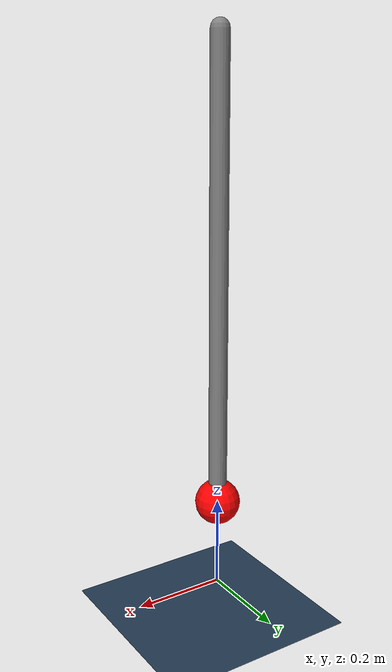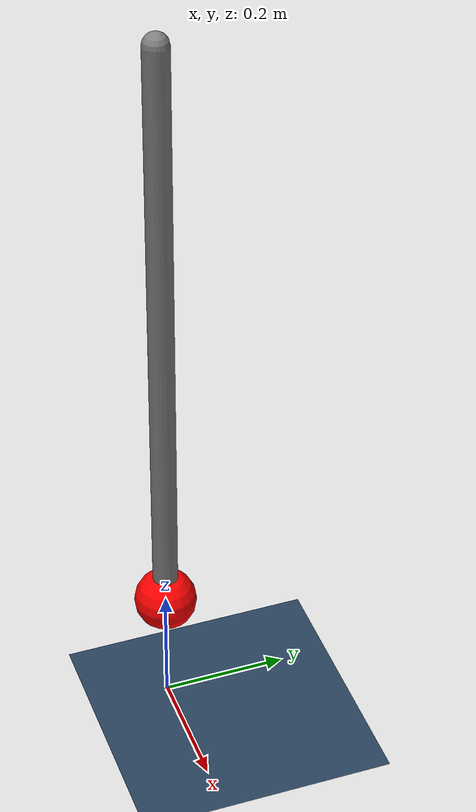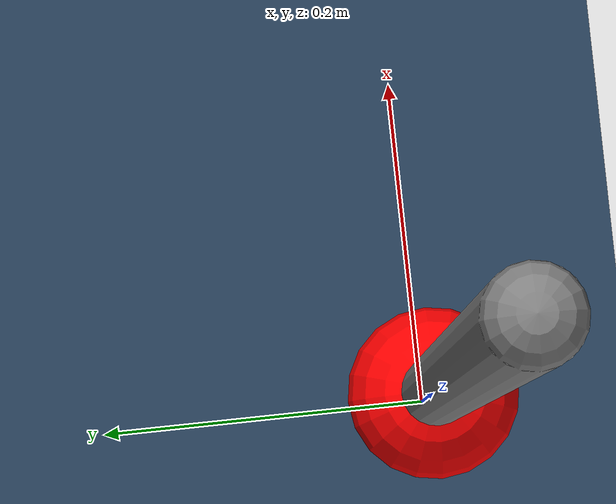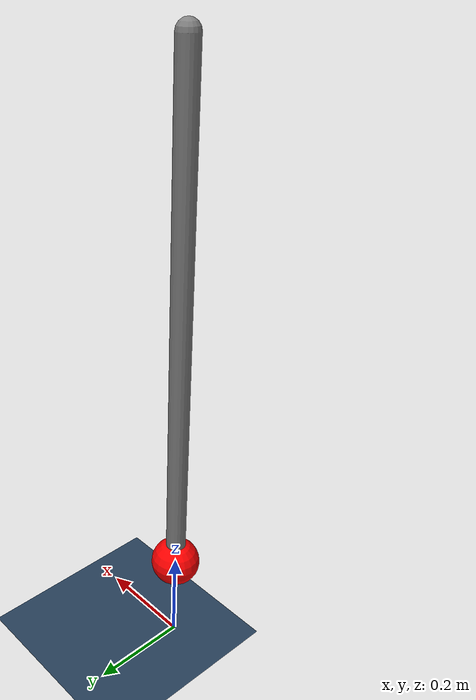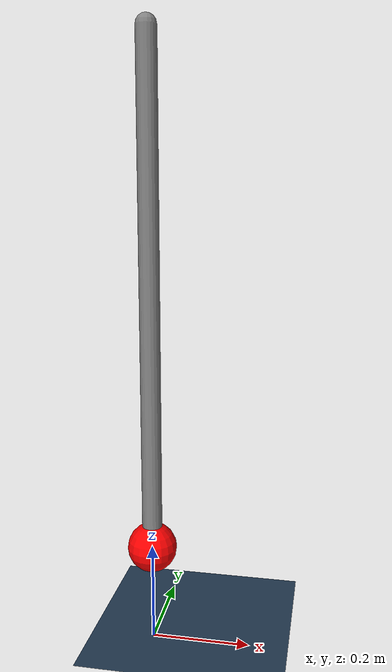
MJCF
<mujoco model="pendulum">

    <compiler angle="radian"/>

    <!-- works -->

    <!-- experimental -->
    <option integrator="implicitfast" timestep="0.02" gravity="0 0 -9.81"/>

    <asset>
        <texture type="skybox" builtin="gradient" rgb1="0.6 0.7 0.9" rgb2="0.3 0.3 0.4" width="512" height="3072"/>
        <texture type="2d" name="groundplane" builtin="checker" mark="edge" rgb1="0.2 0.3 0.4" rgb2="0.1 0.2 0.3" markrgb="0.8 0.8 0.8" width="300" height="300"/>
        <material name="groundplane" texture="groundplane" texuniform="true" texrepeat="5 5" reflectance="0.2"/>
    </asset>

    <worldbody>
        <light name="global_light" directional="true" diffuse="1 1 1" specular="0.3 0.3 0.3" castshadow="false"/>
        <light name="fill_light_0" pos="-5 0 10" dir="0 0 -1" directional="false" diffuse="1 1 1" specular="0.2 0.2 0.2"/>
        <light name="fill_light_1" pos="0 0 10" dir="0 0 -1" directional="false" diffuse="1 1 1" specular="0.2 0.2 0.2"/>
        <light name="fill_light_2" pos="5 0 10" dir="0 0 -1" directional="false" diffuse="1 1 1" specular="0.2 0.2 0.2"/>

        <geom name="floor" pos="0 0 0" size="0 0 0.05" type="plane" material="groundplane"/>

        <!-- Pendulum base -->
        <body name="pendulum" pos="0 0 1.2">
            <!-- Hinge joint rotates around y-axis -->
            <joint name="hinge" type="hinge" axis="0 1 0" pos="0 0 0" damping="0.1"/>

            <!-- Rod of the pendulum -->
            <geom name="rod" type="capsule" fromto="0 0 0 0 0 -1" size="0.02" mass="1"/>

            <!-- Mass at the end -->
            <geom name="bob" type="sphere" pos="0 0 -1" size="0.05" rgba="1 0 0 1" mass="0"/>
        </body>
    </worldbody>

    <actuator>
        <!-- Optional: torque actuator to drive the pendulum -->
        <motor joint="hinge" ctrlrange="-1 1" gear="1"/>
    </actuator>
</mujoco>
